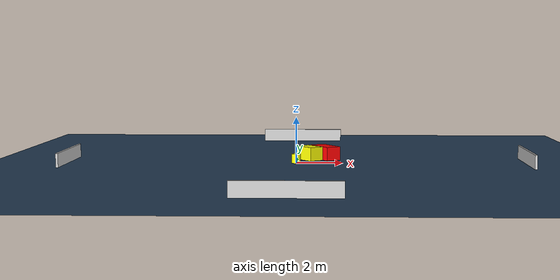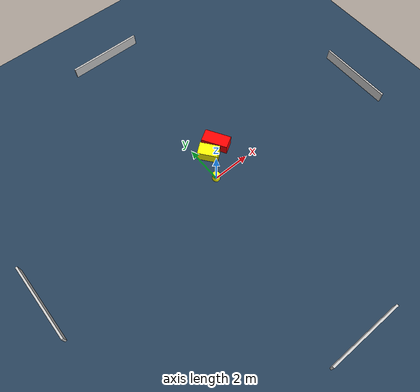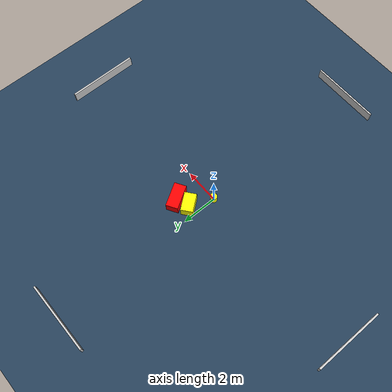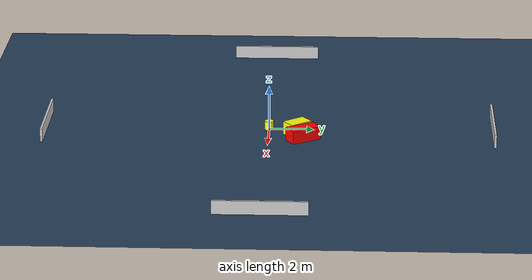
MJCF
<?xml version="1.0" ?>
<mujoco model="generated_environment">
  <option timestep="0.01" integrator="RK4" cone="elliptic"/>
  <default>
    <geom density="1"/>
  </default>
  <asset>
    <texture builtin="gradient" height="3072" name="skybox" rgb1="0.3 0.5 0.7" rgb2="0 0 0" type="skybox" width="512"/>
    <texture builtin="checker" height="300" name="groundplane" rgb1="0.2 0.3 0.4" rgb2="0.1 0.2 0.3" type="2d" width="300"/>
    <material name="groundplane" reflectance="0.2" texrepeat="5 5" texture="groundplane"/>
  </asset>
  <worldbody>
    <light dir="0 0 -1" directional="true" pos="0 0 1.5"/>
    <geom condim="3" friction="0.5 0.005 0.001" material="groundplane" name="floor" pos="0 0 0" size="0 0 0.05" type="plane"/>
    <body name="walls">
      <geom name="wall_1" condim="4" pos="-10.0 0.0 0.3" rgba="0.800000011920929 0.800000011920929 0.800000011920929 1.0" size="0.05 2.0 0.3" type="box"/>
      <geom name="wall_2" condim="4" pos="10.0 0.0 0.3" rgba="0.800000011920929 0.800000011920929 0.800000011920929 1.0" size="0.05 2.0 0.3" type="box"/>
      <geom name="wall_3" condim="4" pos="0.0 -10.0 0.3" rgba="0.800000011920929 0.800000011920929 0.800000011920929 1.0" size="2.0 0.05 0.3" type="box"/>
      <geom name="wall_4" condim="4" pos="0.0 10.0 0.3" rgba="0.800000011920929 0.800000011920929 0.800000011920929 1.0" size="2.0 0.05 0.3" type="box"/>
    </body>
    <body name="robot">
      <joint name="joint_x" type="slide" pos="0 0 0" axis="1 0 0"/>
      <joint name="joint_y" type="slide" pos="0 0 0" axis="0 1 0"/>
      <geom name="robot" type="cylinder" pos="0.0 0.0 0.2" size="0.2 0.2 0.0" mass="5.0" friction="1.0 0.005 0.0001" condim="4" rgba="1.0 1.0 0.0 1.0"/>
    </body>
    <body name="obstacle_1_movable">
      <geom name="obstacle_1_movable" condim="4" pos="0.5457199459265879 1.2751732015268606 0.3" euler="0 0 38.28554895218281" friction="0.0 0.005 0.001" rgba="1.0 1.0 0.0 1.0" size="0.33647406004828473 0.5317504498036736 0.3" type="box" mass="0.1"/>
      <joint type="free"/>
    </body>
    <body name="obstacle_2_static">
      <geom name="obstacle_2_static" condim="4" pos="1.2618868019085807 1.5470305754935803 0.3" euler="0 0 121.2707528641813" friction="0.0 0.005 0.001" rgba="1.0 0.0 0.0 1.0" size="0.6942535741833641 0.33810850144224647 0.3" type="box"/>
    </body>
  </worldbody>
  <actuator>
    <motor name="actuator_x" joint="joint_x" gear="1" ctrlrange="-1 1"/>
    <motor name="actuator_y" joint="joint_y" gear="1" ctrlrange="-1 1"/>
  </actuator>
</mujoco>
